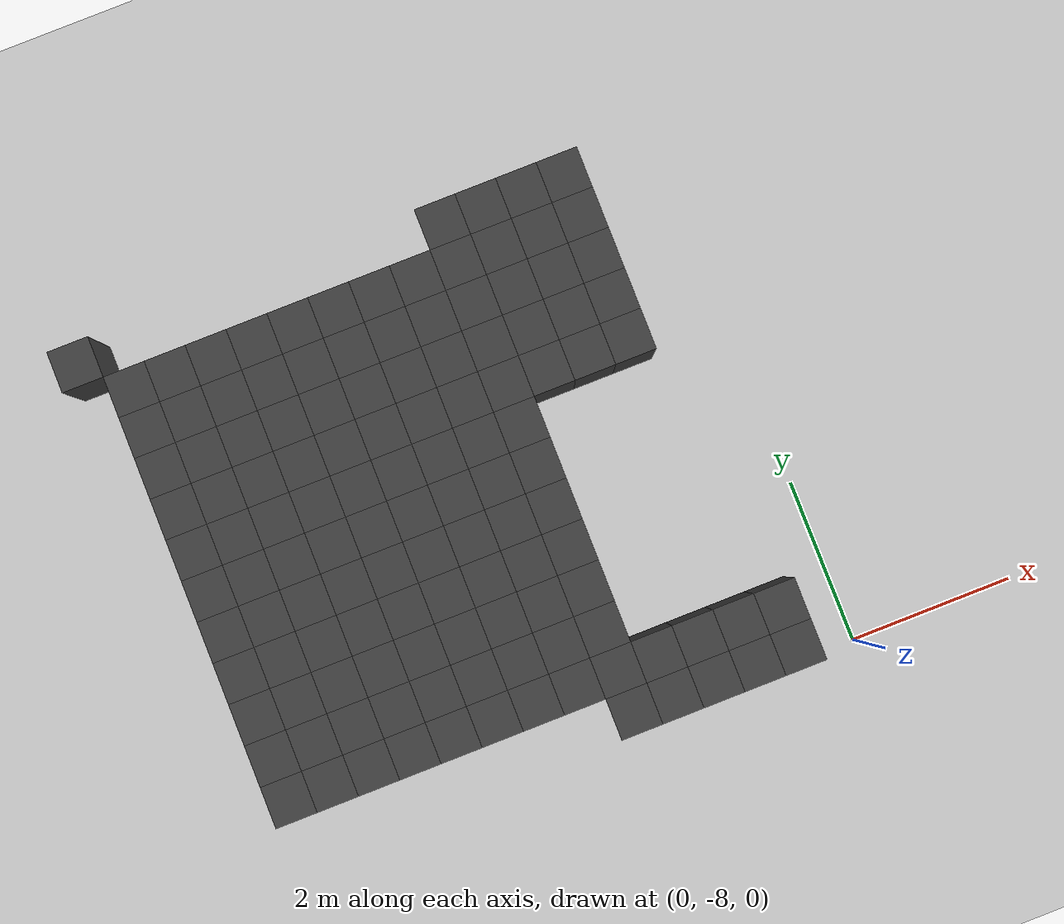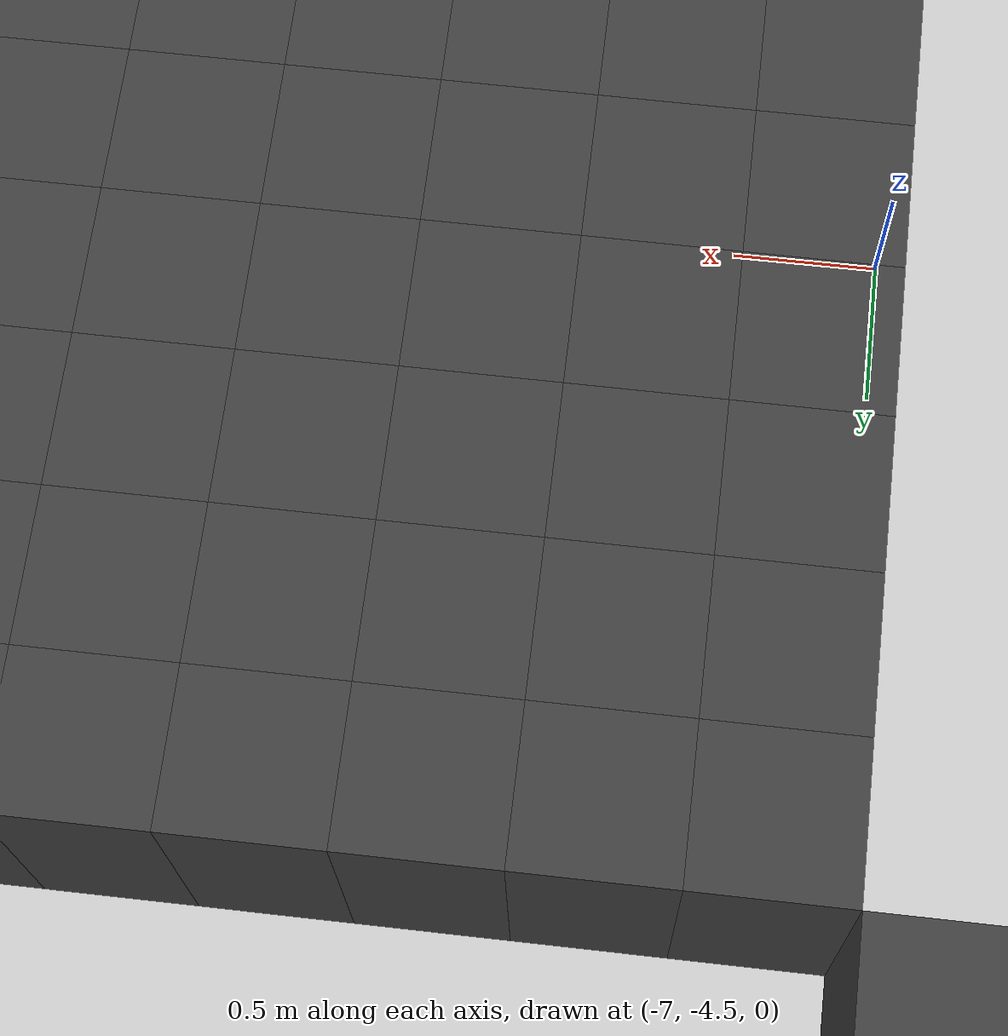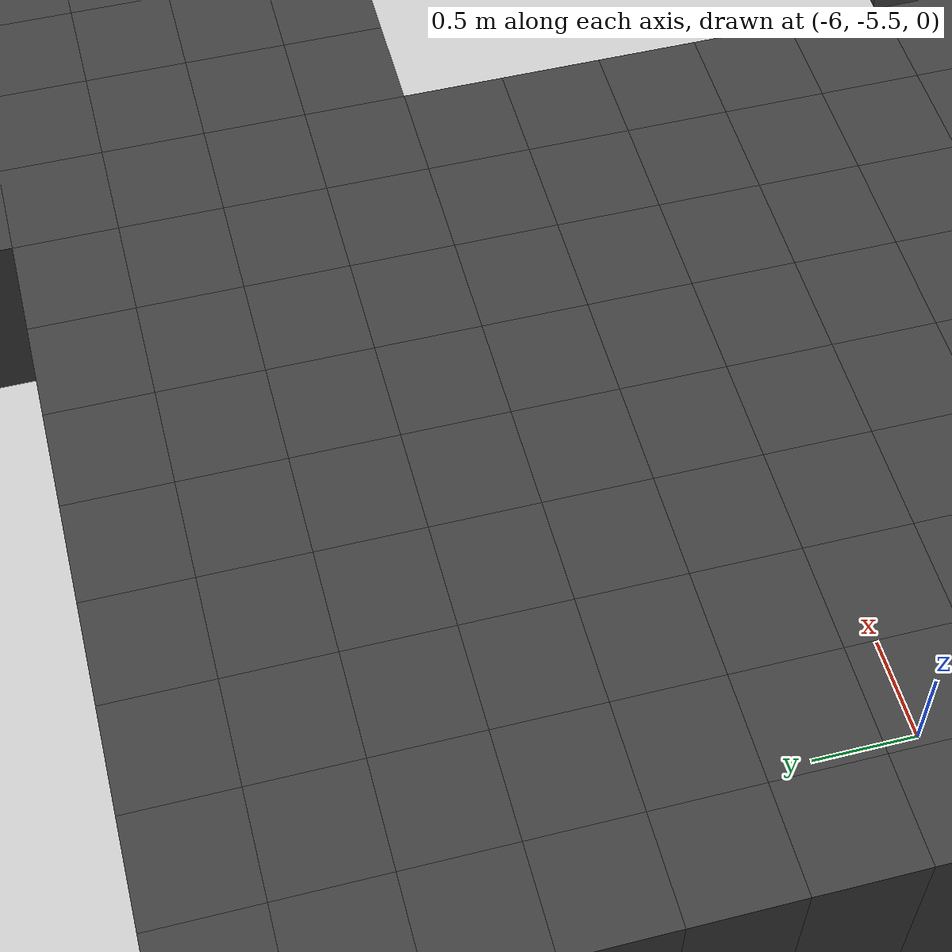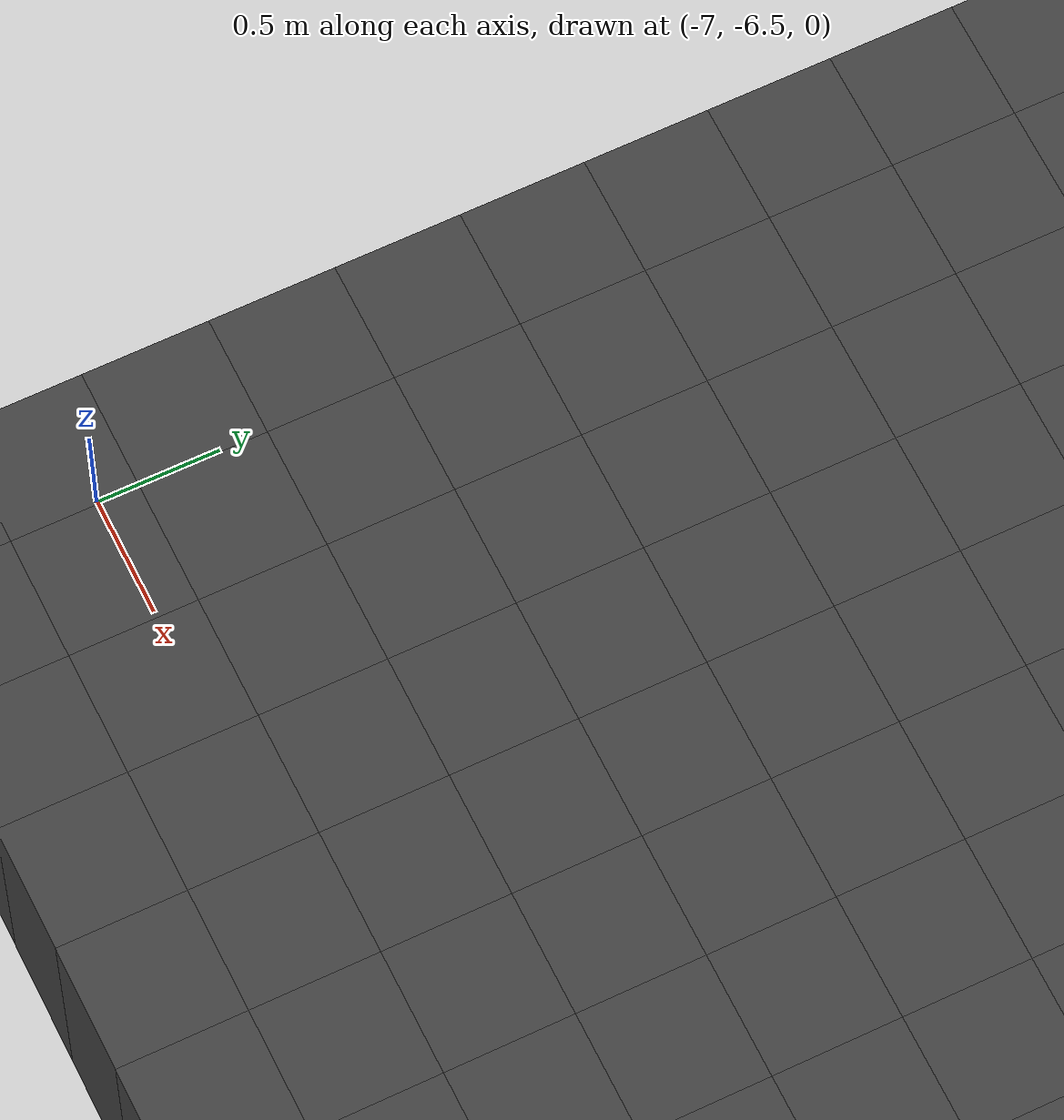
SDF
<sdf version="1.7">
 <world name="map_10764">
  <model name="ground_plane">
   <static>true</static>
   <link name="link">
    <collision name="collision">
     <geometry><plane><normal>0 0 1</normal><size>200 200</size></plane></geometry>
    </collision>
    <visual name="visual">
     <geometry><plane><normal>0 0 1</normal><size>200 200</size></plane></geometry>
     <material><ambient>0.8 0.8 0.8 1</ambient><diffuse>0.8 0.8 0.8 1</diffuse></material>
    </visual>
   </link>
  </model>
  <model name="maze_environment">
   <static>true</static>
   <link name="wall_1139">
    <pose>-7.250 -1.750 0.500 0 0 0</pose>
    <collision name="col"><geometry><box><size>0.5 0.5 1.0</size></box></geometry></collision>
    <visual name="vis">
     <geometry><box><size>0.5 0.5 1.0</size></box></geometry>
     <material><ambient>0.15 0.15 0.15 1</ambient><diffuse>0.25 0.25 0.25 1</diffuse></material>
    </visual>
   </link>
   <link name="wall_1140">
    <pose>-2.750 -1.750 0.500 0 0 0</pose>
    <collision name="col"><geometry><box><size>0.5 0.5 1.0</size></box></geometry></collision>
    <visual name="vis">
     <geometry><box><size>0.5 0.5 1.0</size></box></geometry>
     <material><ambient>0.15 0.15 0.15 1</ambient><diffuse>0.25 0.25 0.25 1</diffuse></material>
    </visual>
   </link>
   <link name="wall_1141">
    <pose>-2.250 -1.750 0.500 0 0 0</pose>
    <collision name="col"><geometry><box><size>0.5 0.5 1.0</size></box></geometry></collision>
    <visual name="vis">
     <geometry><box><size>0.5 0.5 1.0</size></box></geometry>
     <material><ambient>0.15 0.15 0.15 1</ambient><diffuse>0.25 0.25 0.25 1</diffuse></material>
    </visual>
   </link>
   <link name="wall_1142">
    <pose>-1.750 -1.750 0.500 0 0 0</pose>
    <collision name="col"><geometry><box><size>0.5 0.5 1.0</size></box></geometry></collision>
    <visual name="vis">
     <geometry><box><size>0.5 0.5 1.0</size></box></geometry>
     <material><ambient>0.15 0.15 0.15 1</ambient><diffuse>0.25 0.25 0.25 1</diffuse></material>
    </visual>
   </link>
   <link name="wall_1143">
    <pose>-1.250 -1.750 0.500 0 0 0</pose>
    <collision name="col"><geometry><box><size>0.5 0.5 1.0</size></box></geometry></collision>
    <visual name="vis">
     <geometry><box><size>0.5 0.5 1.0</size></box></geometry>
     <material><ambient>0.15 0.15 0.15 1</ambient><diffuse>0.25 0.25 0.25 1</diffuse></material>
    </visual>
   </link>
   <link name="wall_1173">
    <pose>-6.750 -2.250 0.500 0 0 0</pose>
    <collision name="col"><geometry><box><size>0.5 0.5 1.0</size></box></geometry></collision>
    <visual name="vis">
     <geometry><box><size>0.5 0.5 1.0</size></box></geometry>
     <material><ambient>0.15 0.15 0.15 1</ambient><diffuse>0.25 0.25 0.25 1</diffuse></material>
    </visual>
   </link>
   <link name="wall_1174">
    <pose>-6.250 -2.250 0.500 0 0 0</pose>
    <collision name="col"><geometry><box><size>0.5 0.5 1.0</size></box></geometry></collision>
    <visual name="vis">
     <geometry><box><size>0.5 0.5 1.0</size></box></geometry>
     <material><ambient>0.15 0.15 0.15 1</ambient><diffuse>0.25 0.25 0.25 1</diffuse></material>
    </visual>
   </link>
   <link name="wall_1175">
    <pose>-5.750 -2.250 0.500 0 0 0</pose>
    <collision name="col"><geometry><box><size>0.5 0.5 1.0</size></box></geometry></collision>
    <visual name="vis">
     <geometry><box><size>0.5 0.5 1.0</size></box></geometry>
     <material><ambient>0.15 0.15 0.15 1</ambient><diffuse>0.25 0.25 0.25 1</diffuse></material>
    </visual>
   </link>
   <link name="wall_1176">
    <pose>-5.250 -2.250 0.500 0 0 0</pose>
    <collision name="col"><geometry><box><size>0.5 0.5 1.0</size></box></geometry></collision>
    <visual name="vis">
     <geometry><box><size>0.5 0.5 1.0</size></box></geometry>
     <material><ambient>0.15 0.15 0.15 1</ambient><diffuse>0.25 0.25 0.25 1</diffuse></material>
    </visual>
   </link>
   <link name="wall_1177">
    <pose>-4.750 -2.250 0.500 0 0 0</pose>
    <collision name="col"><geometry><box><size>0.5 0.5 1.0</size></box></geometry></collision>
    <visual name="vis">
     <geometry><box><size>0.5 0.5 1.0</size></box></geometry>
     <material><ambient>0.15 0.15 0.15 1</ambient><diffuse>0.25 0.25 0.25 1</diffuse></material>
    </visual>
   </link>
   <link name="wall_1178">
    <pose>-4.250 -2.250 0.500 0 0 0</pose>
    <collision name="col"><geometry><box><size>0.5 0.5 1.0</size></box></geometry></collision>
    <visual name="vis">
     <geometry><box><size>0.5 0.5 1.0</size></box></geometry>
     <material><ambient>0.15 0.15 0.15 1</ambient><diffuse>0.25 0.25 0.25 1</diffuse></material>
    </visual>
   </link>
   <link name="wall_1179">
    <pose>-3.750 -2.250 0.500 0 0 0</pose>
    <collision name="col"><geometry><box><size>0.5 0.5 1.0</size></box></geometry></collision>
    <visual name="vis">
     <geometry><box><size>0.5 0.5 1.0</size></box></geometry>
     <material><ambient>0.15 0.15 0.15 1</ambient><diffuse>0.25 0.25 0.25 1</diffuse></material>
    </visual>
   </link>
   <link name="wall_1180">
    <pose>-3.250 -2.250 0.500 0 0 0</pose>
    <collision name="col"><geometry><box><size>0.5 0.5 1.0</size></box></geometry></collision>
    <visual name="vis">
     <geometry><box><size>0.5 0.5 1.0</size></box></geometry>
     <material><ambient>0.15 0.15 0.15 1</ambient><diffuse>0.25 0.25 0.25 1</diffuse></material>
    </visual>
   </link>
   <link name="wall_1181">
    <pose>-2.750 -2.250 0.500 0 0 0</pose>
    <collision name="col"><geometry><box><size>0.5 0.5 1.0</size></box></geometry></collision>
    <visual name="vis">
     <geometry><box><size>0.5 0.5 1.0</size></box></geometry>
     <material><ambient>0.15 0.15 0.15 1</ambient><diffuse>0.25 0.25 0.25 1</diffuse></material>
    </visual>
   </link>
   <link name="wall_1182">
    <pose>-2.250 -2.250 0.500 0 0 0</pose>
    <collision name="col"><geometry><box><size>0.5 0.5 1.0</size></box></geometry></collision>
    <visual name="vis">
     <geometry><box><size>0.5 0.5 1.0</size></box></geometry>
     <material><ambient>0.15 0.15 0.15 1</ambient><diffuse>0.25 0.25 0.25 1</diffuse></material>
    </visual>
   </link>
   <link name="wall_1183">
    <pose>-1.750 -2.250 0.500 0 0 0</pose>
    <collision name="col"><geometry><box><size>0.5 0.5 1.0</size></box></geometry></collision>
    <visual name="vis">
     <geometry><box><size>0.5 0.5 1.0</size></box></geometry>
     <material><ambient>0.15 0.15 0.15 1</ambient><diffuse>0.25 0.25 0.25 1</diffuse></material>
    </visual>
   </link>
   <link name="wall_1184">
    <pose>-1.250 -2.250 0.500 0 0 0</pose>
    <collision name="col"><geometry><box><size>0.5 0.5 1.0</size></box></geometry></collision>
    <visual name="vis">
     <geometry><box><size>0.5 0.5 1.0</size></box></geometry>
     <material><ambient>0.15 0.15 0.15 1</ambient><diffuse>0.25 0.25 0.25 1</diffuse></material>
    </visual>
   </link>
   <link name="wall_1214">
    <pose>-6.750 -2.750 0.500 0 0 0</pose>
    <collision name="col"><geometry><box><size>0.5 0.5 1.0</size></box></geometry></collision>
    <visual name="vis">
     <geometry><box><size>0.5 0.5 1.0</size></box></geometry>
     <material><ambient>0.15 0.15 0.15 1</ambient><diffuse>0.25 0.25 0.25 1</diffuse></material>
    </visual>
   </link>
   <link name="wall_1215">
    <pose>-6.250 -2.750 0.500 0 0 0</pose>
    <collision name="col"><geometry><box><size>0.5 0.5 1.0</size></box></geometry></collision>
    <visual name="vis">
     <geometry><box><size>0.5 0.5 1.0</size></box></geometry>
     <material><ambient>0.15 0.15 0.15 1</ambient><diffuse>0.25 0.25 0.25 1</diffuse></material>
    </visual>
   </link>
   <link name="wall_1216">
    <pose>-5.750 -2.750 0.500 0 0 0</pose>
    <collision name="col"><geometry><box><size>0.5 0.5 1.0</size></box></geometry></collision>
    <visual name="vis">
     <geometry><box><size>0.5 0.5 1.0</size></box></geometry>
     <material><ambient>0.15 0.15 0.15 1</ambient><diffuse>0.25 0.25 0.25 1</diffuse></material>
    </visual>
   </link>
   <link name="wall_1217">
    <pose>-5.250 -2.750 0.500 0 0 0</pose>
    <collision name="col"><geometry><box><size>0.5 0.5 1.0</size></box></geometry></collision>
    <visual name="vis">
     <geometry><box><size>0.5 0.5 1.0</size></box></geometry>
     <material><ambient>0.15 0.15 0.15 1</ambient><diffuse>0.25 0.25 0.25 1</diffuse></material>
    </visual>
   </link>
   <link name="wall_1218">
    <pose>-4.750 -2.750 0.500 0 0 0</pose>
    <collision name="col"><geometry><box><size>0.5 0.5 1.0</size></box></geometry></collision>
    <visual name="vis">
     <geometry><box><size>0.5 0.5 1.0</size></box></geometry>
     <material><ambient>0.15 0.15 0.15 1</ambient><diffuse>0.25 0.25 0.25 1</diffuse></material>
    </visual>
   </link>
   <link name="wall_1219">
    <pose>-4.250 -2.750 0.500 0 0 0</pose>
    <collision name="col"><geometry><box><size>0.5 0.5 1.0</size></box></geometry></collision>
    <visual name="vis">
     <geometry><box><size>0.5 0.5 1.0</size></box></geometry>
     <material><ambient>0.15 0.15 0.15 1</ambient><diffuse>0.25 0.25 0.25 1</diffuse></material>
    </visual>
   </link>
   <link name="wall_1220">
    <pose>-3.750 -2.750 0.500 0 0 0</pose>
    <collision name="col"><geometry><box><size>0.5 0.5 1.0</size></box></geometry></collision>
    <visual name="vis">
     <geometry><box><size>0.5 0.5 1.0</size></box></geometry>
     <material><ambient>0.15 0.15 0.15 1</ambient><diffuse>0.25 0.25 0.25 1</diffuse></material>
    </visual>
   </link>
   <link name="wall_1221">
    <pose>-3.250 -2.750 0.500 0 0 0</pose>
    <collision name="col"><geometry><box><size>0.5 0.5 1.0</size></box></geometry></collision>
    <visual name="vis">
     <geometry><box><size>0.5 0.5 1.0</size></box></geometry>
     <material><ambient>0.15 0.15 0.15 1</ambient><diffuse>0.25 0.25 0.25 1</diffuse></material>
    </visual>
   </link>
   <link name="wall_1222">
    <pose>-2.750 -2.750 0.500 0 0 0</pose>
    <collision name="col"><geometry><box><size>0.5 0.5 1.0</size></box></geometry></collision>
    <visual name="vis">
     <geometry><box><size>0.5 0.5 1.0</size></box></geometry>
     <material><ambient>0.15 0.15 0.15 1</ambient><diffuse>0.25 0.25 0.25 1</diffuse></material>
    </visual>
   </link>
   <link name="wall_1223">
    <pose>-2.250 -2.750 0.500 0 0 0</pose>
    <collision name="col"><geometry><box><size>0.5 0.5 1.0</size></box></geometry></collision>
    <visual name="vis">
     <geometry><box><size>0.5 0.5 1.0</size></box></geometry>
     <material><ambient>0.15 0.15 0.15 1</ambient><diffuse>0.25 0.25 0.25 1</diffuse></material>
    </visual>
   </link>
   <link name="wall_1224">
    <pose>-1.750 -2.750 0.500 0 0 0</pose>
    <collision name="col"><geometry><box><size>0.5 0.5 1.0</size></box></geometry></collision>
    <visual name="vis">
     <geometry><box><size>0.5 0.5 1.0</size></box></geometry>
     <material><ambient>0.15 0.15 0.15 1</ambient><diffuse>0.25 0.25 0.25 1</diffuse></material>
    </visual>
   </link>
   <link name="wall_1225">
    <pose>-1.250 -2.750 0.500 0 0 0</pose>
    <collision name="col"><geometry><box><size>0.5 0.5 1.0</size></box></geometry></collision>
    <visual name="vis">
     <geometry><box><size>0.5 0.5 1.0</size></box></geometry>
     <material><ambient>0.15 0.15 0.15 1</ambient><diffuse>0.25 0.25 0.25 1</diffuse></material>
    </visual>
   </link>
   <link name="wall_1256">
    <pose>-6.750 -3.250 0.500 0 0 0</pose>
    <collision name="col"><geometry><box><size>0.5 0.5 1.0</size></box></geometry></collision>
    <visual name="vis">
     <geometry><box><size>0.5 0.5 1.0</size></box></geometry>
     <material><ambient>0.15 0.15 0.15 1</ambient><diffuse>0.25 0.25 0.25 1</diffuse></material>
    </visual>
   </link>
   <link name="wall_1257">
    <pose>-6.250 -3.250 0.500 0 0 0</pose>
    <collision name="col"><geometry><box><size>0.5 0.5 1.0</size></box></geometry></collision>
    <visual name="vis">
     <geometry><box><size>0.5 0.5 1.0</size></box></geometry>
     <material><ambient>0.15 0.15 0.15 1</ambient><diffuse>0.25 0.25 0.25 1</diffuse></material>
    </visual>
   </link>
   <link name="wall_1258">
    <pose>-5.750 -3.250 0.500 0 0 0</pose>
    <collision name="col"><geometry><box><size>0.5 0.5 1.0</size></box></geometry></collision>
    <visual name="vis">
     <geometry><box><size>0.5 0.5 1.0</size></box></geometry>
     <material><ambient>0.15 0.15 0.15 1</ambient><diffuse>0.25 0.25 0.25 1</diffuse></material>
    </visual>
   </link>
   <link name="wall_1259">
    <pose>-5.250 -3.250 0.500 0 0 0</pose>
    <collision name="col"><geometry><box><size>0.5 0.5 1.0</size></box></geometry></collision>
    <visual name="vis">
     <geometry><box><size>0.5 0.5 1.0</size></box></geometry>
     <material><ambient>0.15 0.15 0.15 1</ambient><diffuse>0.25 0.25 0.25 1</diffuse></material>
    </visual>
   </link>
   <link name="wall_1260">
    <pose>-4.750 -3.250 0.500 0 0 0</pose>
    <collision name="col"><geometry><box><size>0.5 0.5 1.0</size></box></geometry></collision>
    <visual name="vis">
     <geometry><box><size>0.5 0.5 1.0</size></box></geometry>
     <material><ambient>0.15 0.15 0.15 1</ambient><diffuse>0.25 0.25 0.25 1</diffuse></material>
    </visual>
   </link>
   <link name="wall_1261">
    <pose>-4.250 -3.250 0.500 0 0 0</pose>
    <collision name="col"><geometry><box><size>0.5 0.5 1.0</size></box></geometry></collision>
    <visual name="vis">
     <geometry><box><size>0.5 0.5 1.0</size></box></geometry>
     <material><ambient>0.15 0.15 0.15 1</ambient><diffuse>0.25 0.25 0.25 1</diffuse></material>
    </visual>
   </link>
   <link name="wall_1262">
    <pose>-3.750 -3.250 0.500 0 0 0</pose>
    <collision name="col"><geometry><box><size>0.5 0.5 1.0</size></box></geometry></collision>
    <visual name="vis">
     <geometry><box><size>0.5 0.5 1.0</size></box></geometry>
     <material><ambient>0.15 0.15 0.15 1</ambient><diffuse>0.25 0.25 0.25 1</diffuse></material>
    </visual>
   </link>
   <link name="wall_1263">
    <pose>-3.250 -3.250 0.500 0 0 0</pose>
    <collision name="col"><geometry><box><size>0.5 0.5 1.0</size></box></geometry></collision>
    <visual name="vis">
     <geometry><box><size>0.5 0.5 1.0</size></box></geometry>
     <material><ambient>0.15 0.15 0.15 1</ambient><diffuse>0.25 0.25 0.25 1</diffuse></material>
    </visual>
   </link>
   <link name="wall_1264">
    <pose>-2.750 -3.250 0.500 0 0 0</pose>
    <collision name="col"><geometry><box><size>0.5 0.5 1.0</size></box></geometry></collision>
    <visual name="vis">
     <geometry><box><size>0.5 0.5 1.0</size></box></geometry>
     <material><ambient>0.15 0.15 0.15 1</ambient><diffuse>0.25 0.25 0.25 1</diffuse></material>
    </visual>
   </link>
   <link name="wall_1265">
    <pose>-2.250 -3.250 0.500 0 0 0</pose>
    <collision name="col"><geometry><box><size>0.5 0.5 1.0</size></box></geometry></collision>
    <visual name="vis">
     <geometry><box><size>0.5 0.5 1.0</size></box></geometry>
     <material><ambient>0.15 0.15 0.15 1</ambient><diffuse>0.25 0.25 0.25 1</diffuse></material>
    </visual>
   </link>
   <link name="wall_1266">
    <pose>-1.750 -3.250 0.500 0 0 0</pose>
    <collision name="col"><geometry><box><size>0.5 0.5 1.0</size></box></geometry></collision>
    <visual name="vis">
     <geometry><box><size>0.5 0.5 1.0</size></box></geometry>
     <material><ambient>0.15 0.15 0.15 1</ambient><diffuse>0.25 0.25 0.25 1</diffuse></material>
    </visual>
   </link>
   <link name="wall_1267">
    <pose>-1.250 -3.250 0.500 0 0 0</pose>
    <collision name="col"><geometry><box><size>0.5 0.5 1.0</size></box></geometry></collision>
    <visual name="vis">
     <geometry><box><size>0.5 0.5 1.0</size></box></geometry>
     <material><ambient>0.15 0.15 0.15 1</ambient><diffuse>0.25 0.25 0.25 1</diffuse></material>
    </visual>
   </link>
   <link name="wall_1298">
    <pose>-6.750 -3.750 0.500 0 0 0</pose>
    <collision name="col"><geometry><box><size>0.5 0.5 1.0</size></box></geometry></collision>
    <visual name="vis">
     <geometry><box><size>0.5 0.5 1.0</size></box></geometry>
     <material><ambient>0.15 0.15 0.15 1</ambient><diffuse>0.25 0.25 0.25 1</diffuse></material>
    </visual>
   </link>
   <link name="wall_1299">
    <pose>-6.250 -3.750 0.500 0 0 0</pose>
    <collision name="col"><geometry><box><size>0.5 0.5 1.0</size></box></geometry></collision>
    <visual name="vis">
     <geometry><box><size>0.5 0.5 1.0</size></box></geometry>
     <material><ambient>0.15 0.15 0.15 1</ambient><diffuse>0.25 0.25 0.25 1</diffuse></material>
    </visual>
   </link>
   <link name="wall_1300">
    <pose>-5.750 -3.750 0.500 0 0 0</pose>
    <collision name="col"><geometry><box><size>0.5 0.5 1.0</size></box></geometry></collision>
    <visual name="vis">
     <geometry><box><size>0.5 0.5 1.0</size></box></geometry>
     <material><ambient>0.15 0.15 0.15 1</ambient><diffuse>0.25 0.25 0.25 1</diffuse></material>
    </visual>
   </link>
   <link name="wall_1301">
    <pose>-5.250 -3.750 0.500 0 0 0</pose>
    <collision name="col"><geometry><box><size>0.5 0.5 1.0</size></box></geometry></collision>
    <visual name="vis">
     <geometry><box><size>0.5 0.5 1.0</size></box></geometry>
     <material><ambient>0.15 0.15 0.15 1</ambient><diffuse>0.25 0.25 0.25 1</diffuse></material>
    </visual>
   </link>
   <link name="wall_1302">
    <pose>-4.750 -3.750 0.500 0 0 0</pose>
    <collision name="col"><geometry><box><size>0.5 0.5 1.0</size></box></geometry></collision>
    <visual name="vis">
     <geometry><box><size>0.5 0.5 1.0</size></box></geometry>
     <material><ambient>0.15 0.15 0.15 1</ambient><diffuse>0.25 0.25 0.25 1</diffuse></material>
    </visual>
   </link>
   <link name="wall_1303">
    <pose>-4.250 -3.750 0.500 0 0 0</pose>
    <collision name="col"><geometry><box><size>0.5 0.5 1.0</size></box></geometry></collision>
    <visual name="vis">
     <geometry><box><size>0.5 0.5 1.0</size></box></geometry>
     <material><ambient>0.15 0.15 0.15 1</ambient><diffuse>0.25 0.25 0.25 1</diffuse></material>
    </visual>
   </link>
   <link name="wall_1304">
    <pose>-3.750 -3.750 0.500 0 0 0</pose>
    <collision name="col"><geometry><box><size>0.5 0.5 1.0</size></box></geometry></collision>
    <visual name="vis">
     <geometry><box><size>0.5 0.5 1.0</size></box></geometry>
     <material><ambient>0.15 0.15 0.15 1</ambient><diffuse>0.25 0.25 0.25 1</diffuse></material>
    </visual>
   </link>
   <link name="wall_1305">
    <pose>-3.250 -3.750 0.500 0 0 0</pose>
    <collision name="col"><geometry><box><size>0.5 0.5 1.0</size></box></geometry></collision>
    <visual name="vis">
     <geometry><box><size>0.5 0.5 1.0</size></box></geometry>
     <material><ambient>0.15 0.15 0.15 1</ambient><diffuse>0.25 0.25 0.25 1</diffuse></material>
    </visual>
   </link>
   <link name="wall_1306">
    <pose>-2.750 -3.750 0.500 0 0 0</pose>
    <collision name="col"><geometry><box><size>0.5 0.5 1.0</size></box></geometry></collision>
    <visual name="vis">
     <geometry><box><size>0.5 0.5 1.0</size></box></geometry>
     <material><ambient>0.15 0.15 0.15 1</ambient><diffuse>0.25 0.25 0.25 1</diffuse></material>
    </visual>
   </link>
   <link name="wall_1307">
    <pose>-2.250 -3.750 0.500 0 0 0</pose>
    <collision name="col"><geometry><box><size>0.5 0.5 1.0</size></box></geometry></collision>
    <visual name="vis">
     <geometry><box><size>0.5 0.5 1.0</size></box></geometry>
     <material><ambient>0.15 0.15 0.15 1</ambient><diffuse>0.25 0.25 0.25 1</diffuse></material>
    </visual>
   </link>
   <link name="wall_1308">
    <pose>-1.750 -3.750 0.500 0 0 0</pose>
    <collision name="col"><geometry><box><size>0.5 0.5 1.0</size></box></geometry></collision>
    <visual name="vis">
     <geometry><box><size>0.5 0.5 1.0</size></box></geometry>
     <material><ambient>0.15 0.15 0.15 1</ambient><diffuse>0.25 0.25 0.25 1</diffuse></material>
    </visual>
   </link>
   <link name="wall_1309">
    <pose>-1.250 -3.750 0.500 0 0 0</pose>
    <collision name="col"><geometry><box><size>0.5 0.5 1.0</size></box></geometry></collision>
    <visual name="vis">
     <geometry><box><size>0.5 0.5 1.0</size></box></geometry>
     <material><ambient>0.15 0.15 0.15 1</ambient><diffuse>0.25 0.25 0.25 1</diffuse></material>
    </visual>
   </link>
   <link name="wall_1346">
    <pose>-6.750 -4.250 0.500 0 0 0</pose>
    <collision name="col"><geometry><box><size>0.5 0.5 1.0</size></box></geometry></collision>
    <visual name="vis">
     <geometry><box><size>0.5 0.5 1.0</size></box></geometry>
     <material><ambient>0.15 0.15 0.15 1</ambient><diffuse>0.25 0.25 0.25 1</diffuse></material>
    </visual>
   </link>
   <link name="wall_1347">
    <pose>-6.250 -4.250 0.500 0 0 0</pose>
    <collision name="col"><geometry><box><size>0.5 0.5 1.0</size></box></geometry></collision>
    <visual name="vis">
     <geometry><box><size>0.5 0.5 1.0</size></box></geometry>
     <material><ambient>0.15 0.15 0.15 1</ambient><diffuse>0.25 0.25 0.25 1</diffuse></material>
    </visual>
   </link>
   <link name="wall_1348">
    <pose>-5.750 -4.250 0.500 0 0 0</pose>
    <collision name="col"><geometry><box><size>0.5 0.5 1.0</size></box></geometry></collision>
    <visual name="vis">
     <geometry><box><size>0.5 0.5 1.0</size></box></geometry>
     <material><ambient>0.15 0.15 0.15 1</ambient><diffuse>0.25 0.25 0.25 1</diffuse></material>
    </visual>
   </link>
   <link name="wall_1349">
    <pose>-5.250 -4.250 0.500 0 0 0</pose>
    <collision name="col"><geometry><box><size>0.5 0.5 1.0</size></box></geometry></collision>
    <visual name="vis">
     <geometry><box><size>0.5 0.5 1.0</size></box></geometry>
     <material><ambient>0.15 0.15 0.15 1</ambient><diffuse>0.25 0.25 0.25 1</diffuse></material>
    </visual>
   </link>
   <link name="wall_1350">
    <pose>-4.750 -4.250 0.500 0 0 0</pose>
    <collision name="col"><geometry><box><size>0.5 0.5 1.0</size></box></geometry></collision>
    <visual name="vis">
     <geometry><box><size>0.5 0.5 1.0</size></box></geometry>
     <material><ambient>0.15 0.15 0.15 1</ambient><diffuse>0.25 0.25 0.25 1</diffuse></material>
    </visual>
   </link>
   <link name="wall_1351">
    <pose>-4.250 -4.250 0.500 0 0 0</pose>
    <collision name="col"><geometry><box><size>0.5 0.5 1.0</size></box></geometry></collision>
    <visual name="vis">
     <geometry><box><size>0.5 0.5 1.0</size></box></geometry>
     <material><ambient>0.15 0.15 0.15 1</ambient><diffuse>0.25 0.25 0.25 1</diffuse></material>
    </visual>
   </link>
   <link name="wall_1352">
    <pose>-3.750 -4.250 0.500 0 0 0</pose>
    <collision name="col"><geometry><box><size>0.5 0.5 1.0</size></box></geometry></collision>
    <visual name="vis">
     <geometry><box><size>0.5 0.5 1.0</size></box></geometry>
     <material><ambient>0.15 0.15 0.15 1</ambient><diffuse>0.25 0.25 0.25 1</diffuse></material>
    </visual>
   </link>
   <link name="wall_1353">
    <pose>-3.250 -4.250 0.500 0 0 0</pose>
    <collision name="col"><geometry><box><size>0.5 0.5 1.0</size></box></geometry></collision>
    <visual name="vis">
     <geometry><box><size>0.5 0.5 1.0</size></box></geometry>
     <material><ambient>0.15 0.15 0.15 1</ambient><diffuse>0.25 0.25 0.25 1</diffuse></material>
    </visual>
   </link>
   <link name="wall_1354">
    <pose>-2.750 -4.250 0.500 0 0 0</pose>
    <collision name="col"><geometry><box><size>0.5 0.5 1.0</size></box></geometry></collision>
    <visual name="vis">
     <geometry><box><size>0.5 0.5 1.0</size></box></geometry>
     <material><ambient>0.15 0.15 0.15 1</ambient><diffuse>0.25 0.25 0.25 1</diffuse></material>
    </visual>
   </link>
   <link name="wall_1390">
    <pose>-6.750 -4.750 0.500 0 0 0</pose>
    <collision name="col"><geometry><box><size>0.5 0.5 1.0</size></box></geometry></collision>
    <visual name="vis">
     <geometry><box><size>0.5 0.5 1.0</size></box></geometry>
     <material><ambient>0.15 0.15 0.15 1</ambient><diffuse>0.25 0.25 0.25 1</diffuse></material>
    </visual>
   </link>
   <link name="wall_1391">
    <pose>-6.250 -4.750 0.500 0 0 0</pose>
    <collision name="col"><geometry><box><size>0.5 0.5 1.0</size></box></geometry></collision>
    <visual name="vis">
     <geometry><box><size>0.5 0.5 1.0</size></box></geometry>
     <material><ambient>0.15 0.15 0.15 1</ambient><diffuse>0.25 0.25 0.25 1</diffuse></material>
    </visual>
   </link>
   <link name="wall_1392">
    <pose>-5.750 -4.750 0.500 0 0 0</pose>
    <collision name="col"><geometry><box><size>0.5 0.5 1.0</size></box></geometry></collision>
    <visual name="vis">
     <geometry><box><size>0.5 0.5 1.0</size></box></geometry>
     <material><ambient>0.15 0.15 0.15 1</ambient><diffuse>0.25 0.25 0.25 1</diffuse></material>
    </visual>
   </link>
   <link name="wall_1393">
    <pose>-5.250 -4.750 0.500 0 0 0</pose>
    <collision name="col"><geometry><box><size>0.5 0.5 1.0</size></box></geometry></collision>
    <visual name="vis">
     <geometry><box><size>0.5 0.5 1.0</size></box></geometry>
     <material><ambient>0.15 0.15 0.15 1</ambient><diffuse>0.25 0.25 0.25 1</diffuse></material>
    </visual>
   </link>
   <link name="wall_1394">
    <pose>-4.750 -4.750 0.500 0 0 0</pose>
    <collision name="col"><geometry><box><size>0.5 0.5 1.0</size></box></geometry></collision>
    <visual name="vis">
     <geometry><box><size>0.5 0.5 1.0</size></box></geometry>
     <material><ambient>0.15 0.15 0.15 1</ambient><diffuse>0.25 0.25 0.25 1</diffuse></material>
    </visual>
   </link>
   <link name="wall_1395">
    <pose>-4.250 -4.750 0.500 0 0 0</pose>
    <collision name="col"><geometry><box><size>0.5 0.5 1.0</size></box></geometry></collision>
    <visual name="vis">
     <geometry><box><size>0.5 0.5 1.0</size></box></geometry>
     <material><ambient>0.15 0.15 0.15 1</ambient><diffuse>0.25 0.25 0.25 1</diffuse></material>
    </visual>
   </link>
   <link name="wall_1396">
    <pose>-3.750 -4.750 0.500 0 0 0</pose>
    <collision name="col"><geometry><box><size>0.5 0.5 1.0</size></box></geometry></collision>
    <visual name="vis">
     <geometry><box><size>0.5 0.5 1.0</size></box></geometry>
     <material><ambient>0.15 0.15 0.15 1</ambient><diffuse>0.25 0.25 0.25 1</diffuse></material>
    </visual>
   </link>
   <link name="wall_1397">
    <pose>-3.250 -4.750 0.500 0 0 0</pose>
    <collision name="col"><geometry><box><size>0.5 0.5 1.0</size></box></geometry></collision>
    <visual name="vis">
     <geometry><box><size>0.5 0.5 1.0</size></box></geometry>
     <material><ambient>0.15 0.15 0.15 1</ambient><diffuse>0.25 0.25 0.25 1</diffuse></material>
    </visual>
   </link>
   <link name="wall_1398">
    <pose>-2.750 -4.750 0.500 0 0 0</pose>
    <collision name="col"><geometry><box><size>0.5 0.5 1.0</size></box></geometry></collision>
    <visual name="vis">
     <geometry><box><size>0.5 0.5 1.0</size></box></geometry>
     <material><ambient>0.15 0.15 0.15 1</ambient><diffuse>0.25 0.25 0.25 1</diffuse></material>
    </visual>
   </link>
   <link name="wall_1434">
    <pose>-6.750 -5.250 0.500 0 0 0</pose>
    <collision name="col"><geometry><box><size>0.5 0.5 1.0</size></box></geometry></collision>
    <visual name="vis">
     <geometry><box><size>0.5 0.5 1.0</size></box></geometry>
     <material><ambient>0.15 0.15 0.15 1</ambient><diffuse>0.25 0.25 0.25 1</diffuse></material>
    </visual>
   </link>
   <link name="wall_1435">
    <pose>-6.250 -5.250 0.500 0 0 0</pose>
    <collision name="col"><geometry><box><size>0.5 0.5 1.0</size></box></geometry></collision>
    <visual name="vis">
     <geometry><box><size>0.5 0.5 1.0</size></box></geometry>
     <material><ambient>0.15 0.15 0.15 1</ambient><diffuse>0.25 0.25 0.25 1</diffuse></material>
    </visual>
   </link>
   <link name="wall_1436">
    <pose>-5.750 -5.250 0.500 0 0 0</pose>
    <collision name="col"><geometry><box><size>0.5 0.5 1.0</size></box></geometry></collision>
    <visual name="vis">
     <geometry><box><size>0.5 0.5 1.0</size></box></geometry>
     <material><ambient>0.15 0.15 0.15 1</ambient><diffuse>0.25 0.25 0.25 1</diffuse></material>
    </visual>
   </link>
   <link name="wall_1437">
    <pose>-5.250 -5.250 0.500 0 0 0</pose>
    <collision name="col"><geometry><box><size>0.5 0.5 1.0</size></box></geometry></collision>
    <visual name="vis">
     <geometry><box><size>0.5 0.5 1.0</size></box></geometry>
     <material><ambient>0.15 0.15 0.15 1</ambient><diffuse>0.25 0.25 0.25 1</diffuse></material>
    </visual>
   </link>
   <link name="wall_1438">
    <pose>-4.750 -5.250 0.500 0 0 0</pose>
    <collision name="col"><geometry><box><size>0.5 0.5 1.0</size></box></geometry></collision>
    <visual name="vis">
     <geometry><box><size>0.5 0.5 1.0</size></box></geometry>
     <material><ambient>0.15 0.15 0.15 1</ambient><diffuse>0.25 0.25 0.25 1</diffuse></material>
    </visual>
   </link>
   <link name="wall_1439">
    <pose>-4.250 -5.250 0.500 0 0 0</pose>
    <collision name="col"><geometry><box><size>0.5 0.5 1.0</size></box></geometry></collision>
    <visual name="vis">
     <geometry><box><size>0.5 0.5 1.0</size></box></geometry>
     <material><ambient>0.15 0.15 0.15 1</ambient><diffuse>0.25 0.25 0.25 1</diffuse></material>
    </visual>
   </link>
   <link name="wall_1440">
    <pose>-3.750 -5.250 0.500 0 0 0</pose>
    <collision name="col"><geometry><box><size>0.5 0.5 1.0</size></box></geometry></collision>
    <visual name="vis">
     <geometry><box><size>0.5 0.5 1.0</size></box></geometry>
     <material><ambient>0.15 0.15 0.15 1</ambient><diffuse>0.25 0.25 0.25 1</diffuse></material>
    </visual>
   </link>
   <link name="wall_1441">
    <pose>-3.250 -5.250 0.500 0 0 0</pose>
    <collision name="col"><geometry><box><size>0.5 0.5 1.0</size></box></geometry></collision>
    <visual name="vis">
     <geometry><box><size>0.5 0.5 1.0</size></box></geometry>
     <material><ambient>0.15 0.15 0.15 1</ambient><diffuse>0.25 0.25 0.25 1</diffuse></material>
    </visual>
   </link>
   <link name="wall_1442">
    <pose>-2.750 -5.250 0.500 0 0 0</pose>
    <collision name="col"><geometry><box><size>0.5 0.5 1.0</size></box></geometry></collision>
    <visual name="vis">
     <geometry><box><size>0.5 0.5 1.0</size></box></geometry>
     <material><ambient>0.15 0.15 0.15 1</ambient><diffuse>0.25 0.25 0.25 1</diffuse></material>
    </visual>
   </link>
   <link name="wall_1478">
    <pose>-6.750 -5.750 0.500 0 0 0</pose>
    <collision name="col"><geometry><box><size>0.5 0.5 1.0</size></box></geometry></collision>
    <visual name="vis">
     <geometry><box><size>0.5 0.5 1.0</size></box></geometry>
     <material><ambient>0.15 0.15 0.15 1</ambient><diffuse>0.25 0.25 0.25 1</diffuse></material>
    </visual>
   </link>
   <link name="wall_1479">
    <pose>-6.250 -5.750 0.500 0 0 0</pose>
    <collision name="col"><geometry><box><size>0.5 0.5 1.0</size></box></geometry></collision>
    <visual name="vis">
     <geometry><box><size>0.5 0.5 1.0</size></box></geometry>
     <material><ambient>0.15 0.15 0.15 1</ambient><diffuse>0.25 0.25 0.25 1</diffuse></material>
    </visual>
   </link>
   <link name="wall_1480">
    <pose>-5.750 -5.750 0.500 0 0 0</pose>
    <collision name="col"><geometry><box><size>0.5 0.5 1.0</size></box></geometry></collision>
    <visual name="vis">
     <geometry><box><size>0.5 0.5 1.0</size></box></geometry>
     <material><ambient>0.15 0.15 0.15 1</ambient><diffuse>0.25 0.25 0.25 1</diffuse></material>
    </visual>
   </link>
   <link name="wall_1481">
    <pose>-5.250 -5.750 0.500 0 0 0</pose>
    <collision name="col"><geometry><box><size>0.5 0.5 1.0</size></box></geometry></collision>
    <visual name="vis">
     <geometry><box><size>0.5 0.5 1.0</size></box></geometry>
     <material><ambient>0.15 0.15 0.15 1</ambient><diffuse>0.25 0.25 0.25 1</diffuse></material>
    </visual>
   </link>
   <link name="wall_1482">
    <pose>-4.750 -5.750 0.500 0 0 0</pose>
    <collision name="col"><geometry><box><size>0.5 0.5 1.0</size></box></geometry></collision>
    <visual name="vis">
     <geometry><box><size>0.5 0.5 1.0</size></box></geometry>
     <material><ambient>0.15 0.15 0.15 1</ambient><diffuse>0.25 0.25 0.25 1</diffuse></material>
    </visual>
   </link>
   <link name="wall_1483">
    <pose>-4.250 -5.750 0.500 0 0 0</pose>
    <collision name="col"><geometry><box><size>0.5 0.5 1.0</size></box></geometry></collision>
    <visual name="vis">
     <geometry><box><size>0.5 0.5 1.0</size></box></geometry>
     <material><ambient>0.15 0.15 0.15 1</ambient><diffuse>0.25 0.25 0.25 1</diffuse></material>
    </visual>
   </link>
   <link name="wall_1484">
    <pose>-3.750 -5.750 0.500 0 0 0</pose>
    <collision name="col"><geometry><box><size>0.5 0.5 1.0</size></box></geometry></collision>
    <visual name="vis">
     <geometry><box><size>0.5 0.5 1.0</size></box></geometry>
     <material><ambient>0.15 0.15 0.15 1</ambient><diffuse>0.25 0.25 0.25 1</diffuse></material>
    </visual>
   </link>
   <link name="wall_1485">
    <pose>-3.250 -5.750 0.500 0 0 0</pose>
    <collision name="col"><geometry><box><size>0.5 0.5 1.0</size></box></geometry></collision>
    <visual name="vis">
     <geometry><box><size>0.5 0.5 1.0</size></box></geometry>
     <material><ambient>0.15 0.15 0.15 1</ambient><diffuse>0.25 0.25 0.25 1</diffuse></material>
    </visual>
   </link>
   <link name="wall_1486">
    <pose>-2.750 -5.750 0.500 0 0 0</pose>
    <collision name="col"><geometry><box><size>0.5 0.5 1.0</size></box></geometry></collision>
    <visual name="vis">
     <geometry><box><size>0.5 0.5 1.0</size></box></geometry>
     <material><ambient>0.15 0.15 0.15 1</ambient><diffuse>0.25 0.25 0.25 1</diffuse></material>
    </visual>
   </link>
   <link name="wall_1522">
    <pose>-6.750 -6.250 0.500 0 0 0</pose>
    <collision name="col"><geometry><box><size>0.5 0.5 1.0</size></box></geometry></collision>
    <visual name="vis">
     <geometry><box><size>0.5 0.5 1.0</size></box></geometry>
     <material><ambient>0.15 0.15 0.15 1</ambient><diffuse>0.25 0.25 0.25 1</diffuse></material>
    </visual>
   </link>
   <link name="wall_1523">
    <pose>-6.250 -6.250 0.500 0 0 0</pose>
    <collision name="col"><geometry><box><size>0.5 0.5 1.0</size></box></geometry></collision>
    <visual name="vis">
     <geometry><box><size>0.5 0.5 1.0</size></box></geometry>
     <material><ambient>0.15 0.15 0.15 1</ambient><diffuse>0.25 0.25 0.25 1</diffuse></material>
    </visual>
   </link>
   <link name="wall_1524">
    <pose>-5.750 -6.250 0.500 0 0 0</pose>
    <collision name="col"><geometry><box><size>0.5 0.5 1.0</size></box></geometry></collision>
    <visual name="vis">
     <geometry><box><size>0.5 0.5 1.0</size></box></geometry>
     <material><ambient>0.15 0.15 0.15 1</ambient><diffuse>0.25 0.25 0.25 1</diffuse></material>
    </visual>
   </link>
   <link name="wall_1525">
    <pose>-5.250 -6.250 0.500 0 0 0</pose>
    <collision name="col"><geometry><box><size>0.5 0.5 1.0</size></box></geometry></collision>
    <visual name="vis">
     <geometry><box><size>0.5 0.5 1.0</size></box></geometry>
     <material><ambient>0.15 0.15 0.15 1</ambient><diffuse>0.25 0.25 0.25 1</diffuse></material>
    </visual>
   </link>
   <link name="wall_1526">
    <pose>-4.750 -6.250 0.500 0 0 0</pose>
    <collision name="col"><geometry><box><size>0.5 0.5 1.0</size></box></geometry></collision>
    <visual name="vis">
     <geometry><box><size>0.5 0.5 1.0</size></box></geometry>
     <material><ambient>0.15 0.15 0.15 1</ambient><diffuse>0.25 0.25 0.25 1</diffuse></material>
    </visual>
   </link>
   <link name="wall_1527">
    <pose>-4.250 -6.250 0.500 0 0 0</pose>
    <collision name="col"><geometry><box><size>0.5 0.5 1.0</size></box></geometry></collision>
    <visual name="vis">
     <geometry><box><size>0.5 0.5 1.0</size></box></geometry>
     <material><ambient>0.15 0.15 0.15 1</ambient><diffuse>0.25 0.25 0.25 1</diffuse></material>
    </visual>
   </link>
   <link name="wall_1528">
    <pose>-3.750 -6.250 0.500 0 0 0</pose>
    <collision name="col"><geometry><box><size>0.5 0.5 1.0</size></box></geometry></collision>
    <visual name="vis">
     <geometry><box><size>0.5 0.5 1.0</size></box></geometry>
     <material><ambient>0.15 0.15 0.15 1</ambient><diffuse>0.25 0.25 0.25 1</diffuse></material>
    </visual>
   </link>
   <link name="wall_1529">
    <pose>-3.250 -6.250 0.500 0 0 0</pose>
    <collision name="col"><geometry><box><size>0.5 0.5 1.0</size></box></geometry></collision>
    <visual name="vis">
     <geometry><box><size>0.5 0.5 1.0</size></box></geometry>
     <material><ambient>0.15 0.15 0.15 1</ambient><diffuse>0.25 0.25 0.25 1</diffuse></material>
    </visual>
   </link>
   <link name="wall_1530">
    <pose>-2.750 -6.250 0.500 0 0 0</pose>
    <collision name="col"><geometry><box><size>0.5 0.5 1.0</size></box></geometry></collision>
    <visual name="vis">
     <geometry><box><size>0.5 0.5 1.0</size></box></geometry>
     <material><ambient>0.15 0.15 0.15 1</ambient><diffuse>0.25 0.25 0.25 1</diffuse></material>
    </visual>
   </link>
   <link name="wall_1566">
    <pose>-6.750 -6.750 0.500 0 0 0</pose>
    <collision name="col"><geometry><box><size>0.5 0.5 1.0</size></box></geometry></collision>
    <visual name="vis">
     <geometry><box><size>0.5 0.5 1.0</size></box></geometry>
     <material><ambient>0.15 0.15 0.15 1</ambient><diffuse>0.25 0.25 0.25 1</diffuse></material>
    </visual>
   </link>
   <link name="wall_1567">
    <pose>-6.250 -6.750 0.500 0 0 0</pose>
    <collision name="col"><geometry><box><size>0.5 0.5 1.0</size></box></geometry></collision>
    <visual name="vis">
     <geometry><box><size>0.5 0.5 1.0</size></box></geometry>
     <material><ambient>0.15 0.15 0.15 1</ambient><diffuse>0.25 0.25 0.25 1</diffuse></material>
    </visual>
   </link>
   <link name="wall_1568">
    <pose>-5.750 -6.750 0.500 0 0 0</pose>
    <collision name="col"><geometry><box><size>0.5 0.5 1.0</size></box></geometry></collision>
    <visual name="vis">
     <geometry><box><size>0.5 0.5 1.0</size></box></geometry>
     <material><ambient>0.15 0.15 0.15 1</ambient><diffuse>0.25 0.25 0.25 1</diffuse></material>
    </visual>
   </link>
   <link name="wall_1569">
    <pose>-5.250 -6.750 0.500 0 0 0</pose>
    <collision name="col"><geometry><box><size>0.5 0.5 1.0</size></box></geometry></collision>
    <visual name="vis">
     <geometry><box><size>0.5 0.5 1.0</size></box></geometry>
     <material><ambient>0.15 0.15 0.15 1</ambient><diffuse>0.25 0.25 0.25 1</diffuse></material>
    </visual>
   </link>
   <link name="wall_1570">
    <pose>-4.750 -6.750 0.500 0 0 0</pose>
    <collision name="col"><geometry><box><size>0.5 0.5 1.0</size></box></geometry></collision>
    <visual name="vis">
     <geometry><box><size>0.5 0.5 1.0</size></box></geometry>
     <material><ambient>0.15 0.15 0.15 1</ambient><diffuse>0.25 0.25 0.25 1</diffuse></material>
    </visual>
   </link>
   <link name="wall_1571">
    <pose>-4.250 -6.750 0.500 0 0 0</pose>
    <collision name="col"><geometry><box><size>0.5 0.5 1.0</size></box></geometry></collision>
    <visual name="vis">
     <geometry><box><size>0.5 0.5 1.0</size></box></geometry>
     <material><ambient>0.15 0.15 0.15 1</ambient><diffuse>0.25 0.25 0.25 1</diffuse></material>
    </visual>
   </link>
   <link name="wall_1572">
    <pose>-3.750 -6.750 0.500 0 0 0</pose>
    <collision name="col"><geometry><box><size>0.5 0.5 1.0</size></box></geometry></collision>
    <visual name="vis">
     <geometry><box><size>0.5 0.5 1.0</size></box></geometry>
     <material><ambient>0.15 0.15 0.15 1</ambient><diffuse>0.25 0.25 0.25 1</diffuse></material>
    </visual>
   </link>
   <link name="wall_1573">
    <pose>-3.250 -6.750 0.500 0 0 0</pose>
    <collision name="col"><geometry><box><size>0.5 0.5 1.0</size></box></geometry></collision>
    <visual name="vis">
     <geometry><box><size>0.5 0.5 1.0</size></box></geometry>
     <material><ambient>0.15 0.15 0.15 1</ambient><diffuse>0.25 0.25 0.25 1</diffuse></material>
    </visual>
   </link>
   <link name="wall_1574">
    <pose>-2.750 -6.750 0.500 0 0 0</pose>
    <collision name="col"><geometry><box><size>0.5 0.5 1.0</size></box></geometry></collision>
    <visual name="vis">
     <geometry><box><size>0.5 0.5 1.0</size></box></geometry>
     <material><ambient>0.15 0.15 0.15 1</ambient><diffuse>0.25 0.25 0.25 1</diffuse></material>
    </visual>
   </link>
   <link name="wall_1610">
    <pose>-6.750 -7.250 0.500 0 0 0</pose>
    <collision name="col"><geometry><box><size>0.5 0.5 1.0</size></box></geometry></collision>
    <visual name="vis">
     <geometry><box><size>0.5 0.5 1.0</size></box></geometry>
     <material><ambient>0.15 0.15 0.15 1</ambient><diffuse>0.25 0.25 0.25 1</diffuse></material>
    </visual>
   </link>
   <link name="wall_1611">
    <pose>-6.250 -7.250 0.500 0 0 0</pose>
    <collision name="col"><geometry><box><size>0.5 0.5 1.0</size></box></geometry></collision>
    <visual name="vis">
     <geometry><box><size>0.5 0.5 1.0</size></box></geometry>
     <material><ambient>0.15 0.15 0.15 1</ambient><diffuse>0.25 0.25 0.25 1</diffuse></material>
    </visual>
   </link>
   <link name="wall_1612">
    <pose>-5.750 -7.250 0.500 0 0 0</pose>
    <collision name="col"><geometry><box><size>0.5 0.5 1.0</size></box></geometry></collision>
    <visual name="vis">
     <geometry><box><size>0.5 0.5 1.0</size></box></geometry>
     <material><ambient>0.15 0.15 0.15 1</ambient><diffuse>0.25 0.25 0.25 1</diffuse></material>
    </visual>
   </link>
   <link name="wall_1613">
    <pose>-5.250 -7.250 0.500 0 0 0</pose>
    <collision name="col"><geometry><box><size>0.5 0.5 1.0</size></box></geometry></collision>
    <visual name="vis">
     <geometry><box><size>0.5 0.5 1.0</size></box></geometry>
     <material><ambient>0.15 0.15 0.15 1</ambient><diffuse>0.25 0.25 0.25 1</diffuse></material>
    </visual>
   </link>
   <link name="wall_1614">
    <pose>-4.750 -7.250 0.500 0 0 0</pose>
    <collision name="col"><geometry><box><size>0.5 0.5 1.0</size></box></geometry></collision>
    <visual name="vis">
     <geometry><box><size>0.5 0.5 1.0</size></box></geometry>
     <material><ambient>0.15 0.15 0.15 1</ambient><diffuse>0.25 0.25 0.25 1</diffuse></material>
    </visual>
   </link>
   <link name="wall_1615">
    <pose>-4.250 -7.250 0.500 0 0 0</pose>
    <collision name="col"><geometry><box><size>0.5 0.5 1.0</size></box></geometry></collision>
    <visual name="vis">
     <geometry><box><size>0.5 0.5 1.0</size></box></geometry>
     <material><ambient>0.15 0.15 0.15 1</ambient><diffuse>0.25 0.25 0.25 1</diffuse></material>
    </visual>
   </link>
   <link name="wall_1616">
    <pose>-3.750 -7.250 0.500 0 0 0</pose>
    <collision name="col"><geometry><box><size>0.5 0.5 1.0</size></box></geometry></collision>
    <visual name="vis">
     <geometry><box><size>0.5 0.5 1.0</size></box></geometry>
     <material><ambient>0.15 0.15 0.15 1</ambient><diffuse>0.25 0.25 0.25 1</diffuse></material>
    </visual>
   </link>
   <link name="wall_1617">
    <pose>-3.250 -7.250 0.500 0 0 0</pose>
    <collision name="col"><geometry><box><size>0.5 0.5 1.0</size></box></geometry></collision>
    <visual name="vis">
     <geometry><box><size>0.5 0.5 1.0</size></box></geometry>
     <material><ambient>0.15 0.15 0.15 1</ambient><diffuse>0.25 0.25 0.25 1</diffuse></material>
    </visual>
   </link>
   <link name="wall_1618">
    <pose>-2.750 -7.250 0.500 0 0 0</pose>
    <collision name="col"><geometry><box><size>0.5 0.5 1.0</size></box></geometry></collision>
    <visual name="vis">
     <geometry><box><size>0.5 0.5 1.0</size></box></geometry>
     <material><ambient>0.15 0.15 0.15 1</ambient><diffuse>0.25 0.25 0.25 1</diffuse></material>
    </visual>
   </link>
   <link name="wall_1619">
    <pose>-2.250 -7.250 0.500 0 0 0</pose>
    <collision name="col"><geometry><box><size>0.5 0.5 1.0</size></box></geometry></collision>
    <visual name="vis">
     <geometry><box><size>0.5 0.5 1.0</size></box></geometry>
     <material><ambient>0.15 0.15 0.15 1</ambient><diffuse>0.25 0.25 0.25 1</diffuse></material>
    </visual>
   </link>
   <link name="wall_1620">
    <pose>-1.750 -7.250 0.500 0 0 0</pose>
    <collision name="col"><geometry><box><size>0.5 0.5 1.0</size></box></geometry></collision>
    <visual name="vis">
     <geometry><box><size>0.5 0.5 1.0</size></box></geometry>
     <material><ambient>0.15 0.15 0.15 1</ambient><diffuse>0.25 0.25 0.25 1</diffuse></material>
    </visual>
   </link>
   <link name="wall_1621">
    <pose>-1.250 -7.250 0.500 0 0 0</pose>
    <collision name="col"><geometry><box><size>0.5 0.5 1.0</size></box></geometry></collision>
    <visual name="vis">
     <geometry><box><size>0.5 0.5 1.0</size></box></geometry>
     <material><ambient>0.15 0.15 0.15 1</ambient><diffuse>0.25 0.25 0.25 1</diffuse></material>
    </visual>
   </link>
   <link name="wall_1622">
    <pose>-0.750 -7.250 0.500 0 0 0</pose>
    <collision name="col"><geometry><box><size>0.5 0.5 1.0</size></box></geometry></collision>
    <visual name="vis">
     <geometry><box><size>0.5 0.5 1.0</size></box></geometry>
     <material><ambient>0.15 0.15 0.15 1</ambient><diffuse>0.25 0.25 0.25 1</diffuse></material>
    </visual>
   </link>
   <link name="wall_1667">
    <pose>-2.750 -7.750 0.500 0 0 0</pose>
    <collision name="col"><geometry><box><size>0.5 0.5 1.0</size></box></geometry></collision>
    <visual name="vis">
     <geometry><box><size>0.5 0.5 1.0</size></box></geometry>
     <material><ambient>0.15 0.15 0.15 1</ambient><diffuse>0.25 0.25 0.25 1</diffuse></material>
    </visual>
   </link>
   <link name="wall_1668">
    <pose>-2.250 -7.750 0.500 0 0 0</pose>
    <collision name="col"><geometry><box><size>0.5 0.5 1.0</size></box></geometry></collision>
    <visual name="vis">
     <geometry><box><size>0.5 0.5 1.0</size></box></geometry>
     <material><ambient>0.15 0.15 0.15 1</ambient><diffuse>0.25 0.25 0.25 1</diffuse></material>
    </visual>
   </link>
   <link name="wall_1669">
    <pose>-1.750 -7.750 0.500 0 0 0</pose>
    <collision name="col"><geometry><box><size>0.5 0.5 1.0</size></box></geometry></collision>
    <visual name="vis">
     <geometry><box><size>0.5 0.5 1.0</size></box></geometry>
     <material><ambient>0.15 0.15 0.15 1</ambient><diffuse>0.25 0.25 0.25 1</diffuse></material>
    </visual>
   </link>
   <link name="wall_1670">
    <pose>-1.250 -7.750 0.500 0 0 0</pose>
    <collision name="col"><geometry><box><size>0.5 0.5 1.0</size></box></geometry></collision>
    <visual name="vis">
     <geometry><box><size>0.5 0.5 1.0</size></box></geometry>
     <material><ambient>0.15 0.15 0.15 1</ambient><diffuse>0.25 0.25 0.25 1</diffuse></material>
    </visual>
   </link>
   <link name="wall_1671">
    <pose>-0.750 -7.750 0.500 0 0 0</pose>
    <collision name="col"><geometry><box><size>0.5 0.5 1.0</size></box></geometry></collision>
    <visual name="vis">
     <geometry><box><size>0.5 0.5 1.0</size></box></geometry>
     <material><ambient>0.15 0.15 0.15 1</ambient><diffuse>0.25 0.25 0.25 1</diffuse></material>
    </visual>
   </link>
  </model>
 </world>
</sdf>
